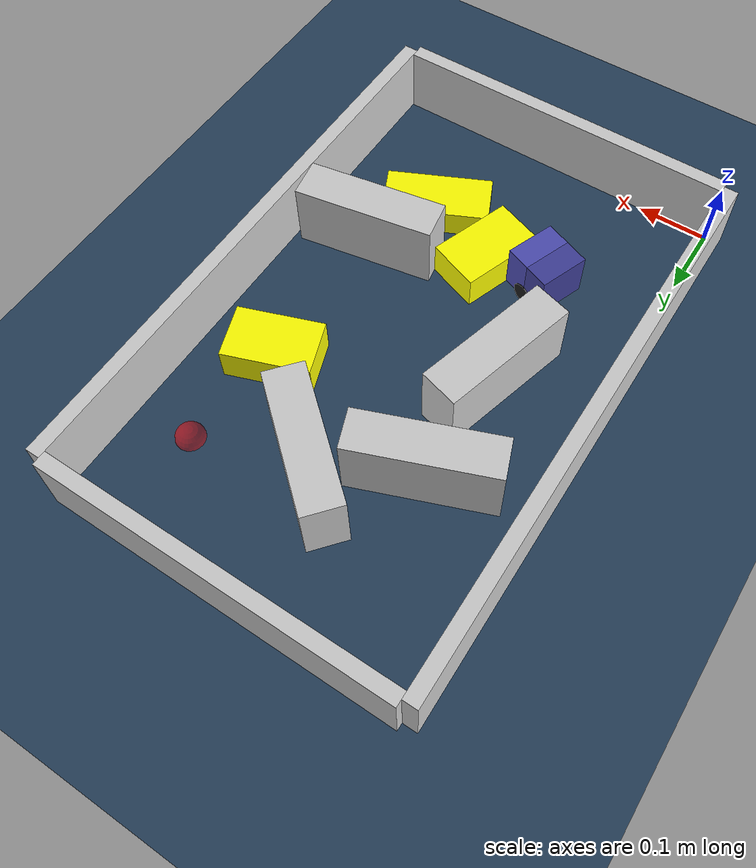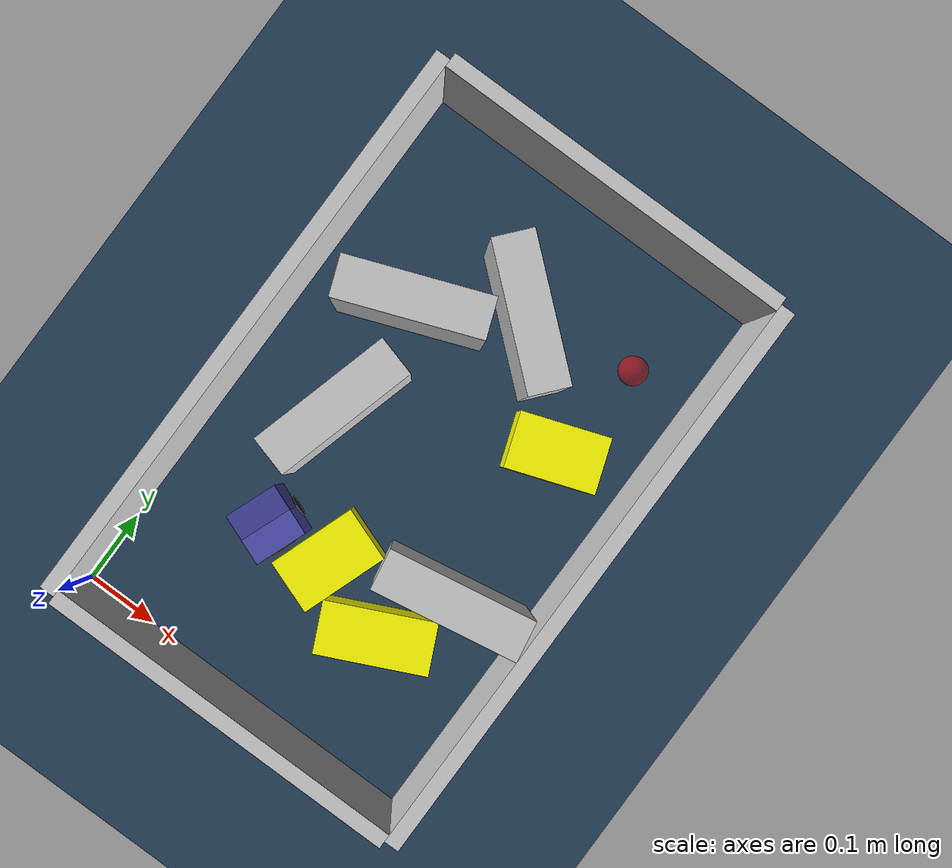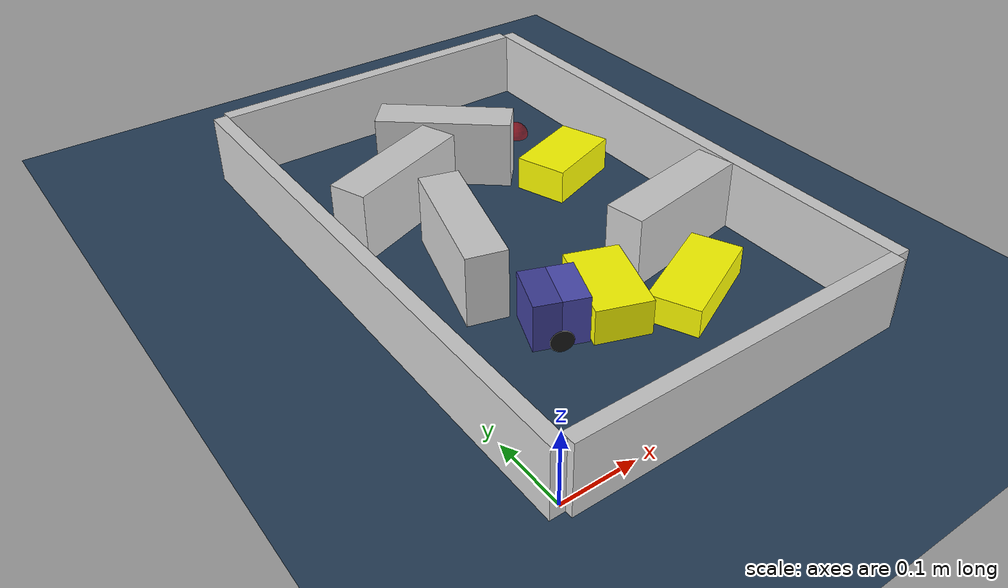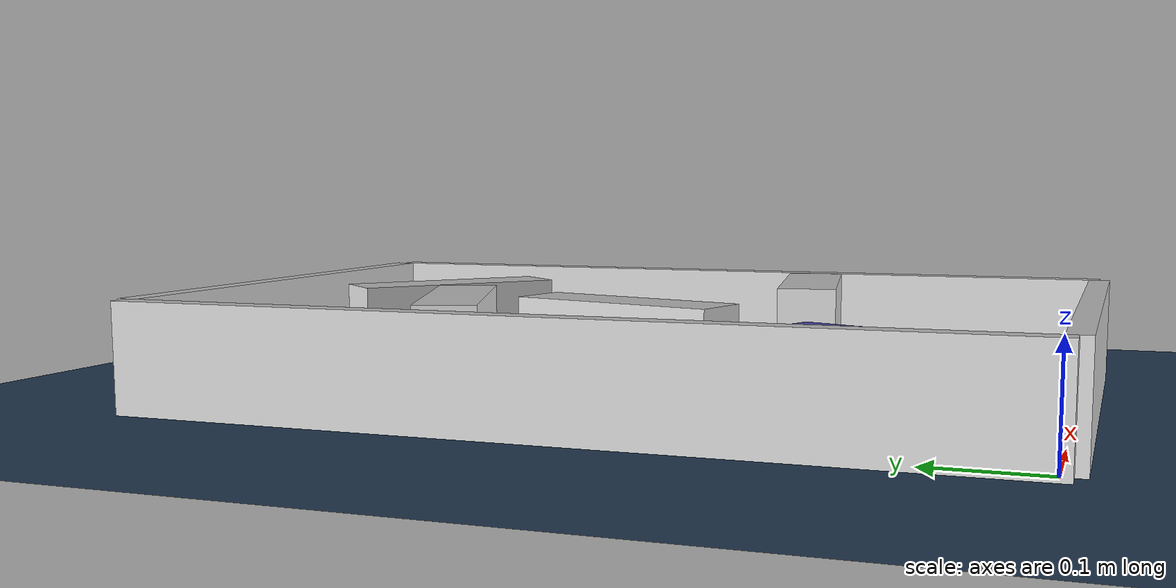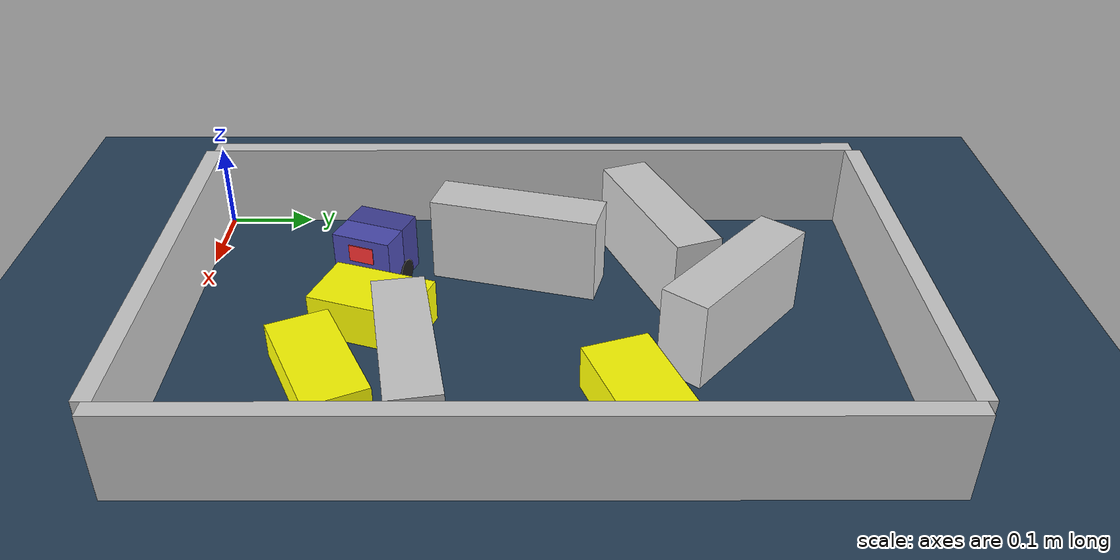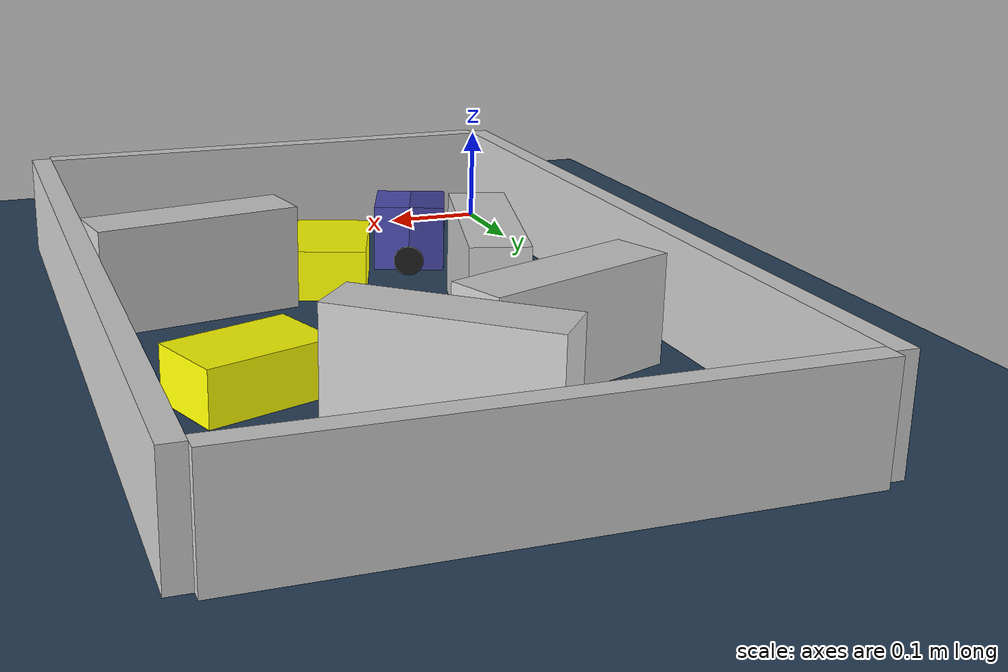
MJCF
<?xml version='1.0' encoding='utf-8'?>
<mujoco model="real_buildable">
  <compiler angle="degree" />
  <option timestep="0.002" integrator="implicitfast" iterations="100" cone="elliptic" />
  <default>
    <geom density="1" />
  </default>
  <asset>
    <texture builtin="gradient" height="3072" rgb1="0.3 0.5 0.7" rgb2="0 0 0" type="skybox" width="512" />
    <texture builtin="checker" height="300" mark="edge" markrgb="0.8 0.8 0.8" name="groundplane" rgb1="0.2 0.3 0.4" rgb2="0.1 0.2 0.3" type="2d" width="300" />
    <material name="groundplane" reflectance="0.2" texrepeat="5 5" texture="groundplane" texuniform="true" />
  </asset>
  <worldbody>
    <light dir="0 0 -1" directional="true" pos="0 0 1.5" />
    <geom name="floor" type="plane" condim="4" friction="0.5 0.005 0.001" material="groundplane" size="0 0 0.05" />
    <body name="walls">
      <geom name="wall_boundary_left" type="box" condim="4" friction="1.0 0.005 0.0001" rgba="0.8 0.8 0.8 1" pos="-0.010000 0.387500 0.050000" euler="0 0 0.000000" size="0.010000 0.397500 0.050000" />
      <geom name="wall_boundary_right" type="box" condim="4" friction="1.0 0.005 0.0001" rgba="0.8 0.8 0.8 1" pos="0.500000 0.387500 0.050000" euler="0 0 0.000000" size="0.010000 0.397500 0.050000" />
      <geom name="wall_boundary_bottom" type="box" condim="4" friction="1.0 0.005 0.0001" rgba="0.8 0.8 0.8 1" pos="0.245000 -0.010000 0.050000" euler="0 0 0.000000" size="0.245000 0.010000 0.050000" />
      <geom name="wall_boundary_top" type="box" condim="4" friction="1.0 0.005 0.0001" rgba="0.8 0.8 0.8 1" pos="0.245000 0.785000 0.050000" euler="0 0 0.000000" size="0.245000 0.010000 0.050000" />
      <geom name="wall_inner_1" type="box" condim="4" friction="1.0 0.005 0.0001" rgba="0.8 0.8 0.8 1" pos="0.389214 0.264573 0.050000" euler="0 0 9.954213" size="0.097500 0.027500 0.050000" />
      <geom name="wall_inner_2" type="box" condim="4" friction="1.0 0.005 0.0001" rgba="0.8 0.8 0.8 1" pos="0.132042 0.369672 0.050000" euler="0 0 74.577875" size="0.097500 0.027500 0.050000" />
      <geom name="wall_inner_3" type="box" condim="4" friction="1.0 0.005 0.0001" rgba="0.8 0.8 0.8 1" pos="0.132000 0.532000 0.050000" euler="0 0 20.900000" size="0.097500 0.027500 0.050000" />
      <geom name="wall_inner_4" type="box" condim="4" friction="1.0 0.005 0.0001" rgba="0.8 0.8 0.8 1" pos="0.256000 0.601000 0.050000" euler="0 0 139.600000" size="0.097500 0.027500 0.050000" />
    </body>
    <body name="car" pos="0.15029166164141541 0.20529128844845054 0.01" quat="0.9834618812391015 0 0 -0.18111523444936192">
      <freejoint name="car_freejoint" />
      <inertial pos="0 0 0.0375" mass="0.35" diaginertia="0.000266 0.000266 0.000286" />
      <geom name="front_chassis_collision" type="box" pos="0.0175 0 0.0375" size="0.0175 0.035 0.0325" rgba="0.3 0.3 0.7 1" />
      <geom name="rear_chassis_collision" type="box" pos="-0.0175 0 0.0375" size="0.0175 0.035 0.0325" rgba="0.25 0.25 0.6 1" />
      <geom name="front_marker" type="box" pos="0.034 0 0.0505" size="0.002 0.015 0.01" rgba="1 0.2 0.2 1" contype="0" conaffinity="0" />
      <body name="rear_support_body" pos="-0.03 0 0.0025">
        <joint name="rear_caster_joint" type="ball" damping="0.0001" />
        <inertial pos="0 0 0" mass="0.025" diaginertia="0.000001 0.000001 0.000001" />
        <geom name="rear_support" type="sphere" pos="0 0 0" size="0.0025" friction="0 0 0" rgba="0.7 0.1 0.1 1" />
      </body>
      <body name="front_support_body" pos="0.03 0 0.0025">
        <joint name="front_caster_joint" type="ball" damping="0.0001" />
        <inertial pos="0 0 0" mass="0.025" diaginertia="0.000001 0.000001 0.000001" />
        <geom name="front_support" type="sphere" pos="0 0 0" size="0.0025" friction="0 0 0" rgba="0.1 0.7 0.1 1" />
      </body>
      <body name="left_wheel" pos="0 0.0375 0.015">
        <inertial pos="0 0 0" mass="0.05" diaginertia="0.000003 0.000006 0.000003" />
        <joint name="left_wheel_joint" type="hinge" axis="0 1 0" damping="0.01" armature="0.0001" />
        <geom name="left_wheel_collision" type="cylinder" size="0.015 0.0005" euler="90 0 0" rgba="0.1 0.1 0.1 1" />
      </body>
      <body name="right_wheel" pos="0 -0.0375 0.015">
        <inertial pos="0 0 0" mass="0.05" diaginertia="0.000003 0.000006 0.000003" />
        <joint name="right_wheel_joint" type="hinge" axis="0 1 0" damping="0.01" armature="0.0001" />
        <geom name="right_wheel_collision" type="cylinder" size="0.015 0.0005" euler="90 0 0" rgba="0.1 0.1 0.1 1" />
      </body>
    </body>
    <body name="obstacle_0_movable">
      <geom name="obstacle_0_movable" condim="4" pos="0.23676395254917296 0.20967391339554348 0.025000000000000001" friction="1 0.005 0.0001" rgba="1 1 0 1" size="0.037500 0.060000 0.025000" type="box" mass="0.1" quat="0.16943723766602212 0 0 0.98554097961074549" />
      <joint type="free" />
    </body>
    <body name="obstacle_1_movable">
      <geom name="obstacle_1_movable" condim="4" pos="0.38799999999999973 0.48999999999999921 0.025000000000000001" friction="1 0.005 0.0001" rgba="1 1 0 1" size="0.037500 0.060000 0.025000" type="box" mass="0.1" quat="0.81664155516167891 0 0 -0.57714519003723364" />
      <joint type="free" />
    </body>
    <body name="obstacle_2_movable">
      <geom name="obstacle_2_movable" condim="4" pos="0.34344676092287479 0.16513538999384936 0.02" friction="1 0.005 0.0001" rgba="1 1 0 1" size="0.035000 0.075000 0.020000" type="box" mass="0.1" quat="0.536470833322235 0 0 0.84391886161795604" />
      <joint type="free" />
    </body>
    <site name="goal" type="sphere" pos="0.410000 0.640000 0.0" size="0.02" rgba="1 0 0 0.5" />
  </worldbody>
  <actuator>
    <velocity name="left_wheel_drive" joint="left_wheel_joint" ctrlrange="-25 25" kv="0.75" forcerange="-0.5 0.5" />
    <velocity name="right_wheel_drive" joint="right_wheel_joint" ctrlrange="-25 25" kv="0.75" forcerange="-0.5 0.5" />
  </actuator>
</mujoco>
